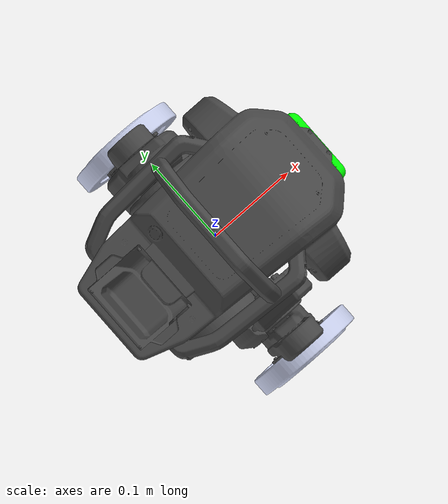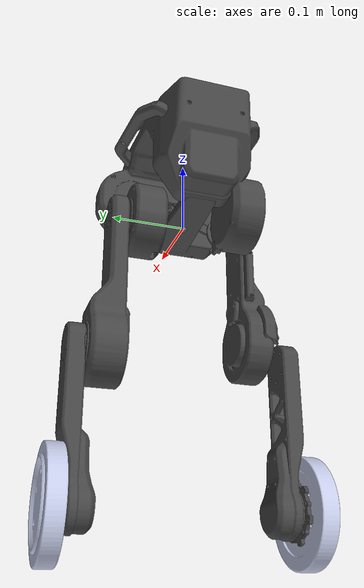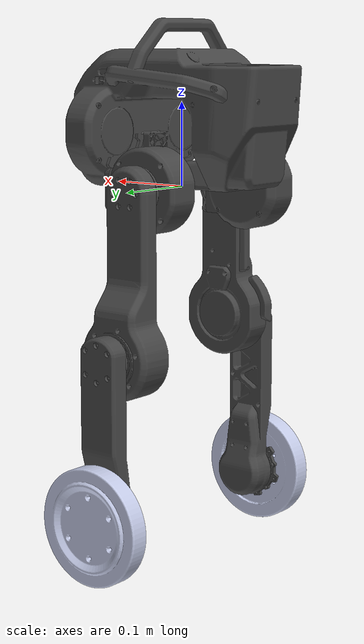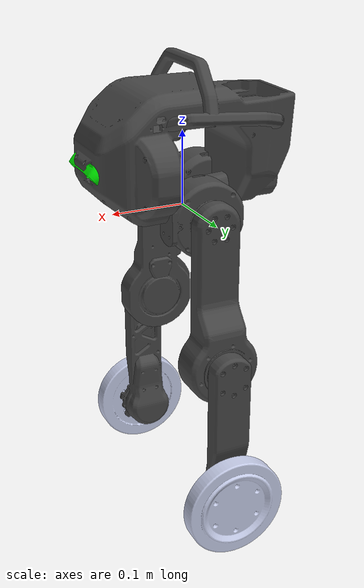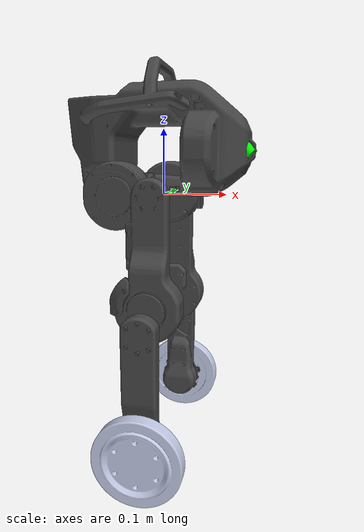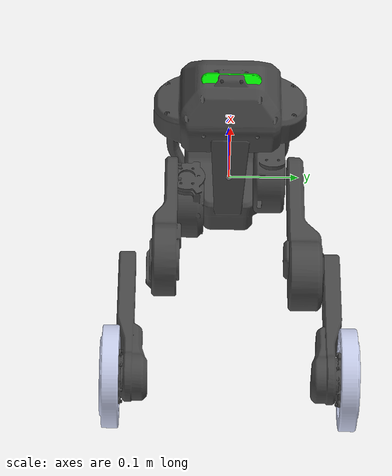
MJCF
<mujoco model="pineapple">
  <compiler angle="radian" meshdir="../v1/meshes/"/>
  <option cone="elliptic" impratio="100"/>

  <default>
      <default class="pinapple">
          <geom friction="0.4" margin="0.001" condim="1"/>
          <joint damping="0.1" armature="0.01" frictionloss="0.2"/>
          <motor ctrlrange="-23.7 23.7"/>
          <default class="l_hip">
              <joint axis="1 0 0" range="-0.52358 0.17444"/>
              <motor ctrlrange="-23.7 23.7"/>
          </default>
          <default class="r_hip">
              <joint axis="1 0 0" range="-0.17444 0.52358"/>
              <motor ctrlrange="-23.7 23.7"/>
          </default>
          <default class="thigh">
              <joint axis="0 1 0" range="0 1.57"/>
              <motor ctrlrange="-23.7 23.7"/>
          </default>
          <default class="calf">
              <joint axis="0 1 0" range="-3.141 0"/>
              <motor ctrlrange="-33.5 33.5"/>
          </default>
          <default class="visual">
              <geom type="mesh" contype="0" conaffinity="0" group="2"/>
          </default>
          <default class="collision">
              <geom group="3" type="mesh" rgba="1 0 0 0.3" />
              <default class="wheel">
              <geom size="0.022" priority="1" condim="6"
                  friction="0.8 0.02 0.01"/>
              </default>
          </default>
      </default>
  </default>

  <asset>
    <mesh name="base_link" file="base_link.STL"/>
    <mesh name="base_link_collision" file="base_link_collision.STL"/>
    <mesh name="cam" file="cam.STL"/>
    <mesh name="L_hip" file="L_hip.STL"/>
    <mesh name="L_thigh" file="L_thigh.STL"/>
    <mesh name="L_thigh_collision" file="L_thigh_collision.STL"/>
    <mesh name="L_calf" file="L_calf.STL"/>
    <mesh name="L_calf_collision" file="L_calf_collision.STL"/>
    <mesh name="L_wheel" file="L_wheel.STL"/>
    <mesh name="R_hip" file="R_hip.STL"/>
    <mesh name="R_thigh" file="R_thigh.STL"/>
    <mesh name="R_thigh_collision" file="R_thigh_collision.STL"/>
    <mesh name="R_calf" file="R_calf.STL"/>
    <mesh name="R_calf_collision" file="R_calf_collision.STL"/>
    <mesh name="R_wheel" file="R_wheel.STL"/>
  </asset>

  <worldbody>
  <body name="base_link" pos="0 0 0" childclass="pinapple">
      <inertial pos="-0.02063232 0.00164283 -0.01555938" quat="1 0 0 0" mass="2.65" diaginertia="0.01804185 0.01102779 0.00752637" />
      <freejoint />
      <site name="imu" pos="0 0 0" />
      <geom type="mesh" contype="0" conaffinity="0" group="1" density="0" rgba="0.278431 0.278431 0.278431 1" mesh="base_link"/>
      <geom type="mesh" rgba="0.752941 0.752941 0.752941 1" mesh="base_link_collision" class="collision"/>
      <geom pos="0.136663 0 0.0595399" quat="0.939693 0 0.34202 0" type="mesh" contype="0" conaffinity="0" group="1" density="0" rgba="0 1 0 1" mesh="cam"/>
      <body name="L_hip" pos="0 0.06125 0" >
        <inertial pos="0.00220657 -0.00275734 0.00000000" quat="0.495134 0.500357 0.505071 0.499388" mass="0.573" diaginertia="0.000929348 0.000666519 0.000585923"/>
        <joint name="L_hip_joint" class="l_hip"/>
        <geom type="mesh" contype="0" conaffinity="0" group="1" density="0" rgba="0.278431 0.278431 0.278431 1" mesh="L_hip"/>
        <body name="L_thigh" pos="0 0.0129353 0">
          <inertial pos="-3.518e-05 -0.024423 -0.117737" quat="0.707036 0.023514 -0.0231203 0.706408" mass="0.75" diaginertia="0.00563942 0.00538265 0.000562439"/>
          <joint name="L_thigh_joint" class="thigh"/>
          <geom type="mesh" contype="0" conaffinity="0" group="1" density="0" rgba="0.278431 0.278431 0.278431 1" mesh="L_thigh"/>
          <geom type="mesh" rgba="0.752941 0.752941 0.752941 1" mesh="L_thigh_collision" class="collision"/>
          <body name="L_calf" pos="0 0.0359318 -0.19">
            <inertial pos="-6.785e-05 -0.0320155 -0.120892" quat="0.705593 -0.00113069 0.00081195 0.708616" mass="0.5" diaginertia="0.00347557 0.00341614 0.000198605"/>
            <joint name="L_calf_joint" class="calf"/>
            <geom type="mesh" contype="0" conaffinity="0" group="1" density="0" rgba="0.278431 0.278431 0.278431 1" mesh="L_calf"/>
            <geom type="mesh" rgba="0.752941 0.752941 0.752941 1" mesh="L_calf_collision" class="collision"/>
            <body name="L_wheel" pos="0 0.0421818 -0.19">
              <inertial pos="0 -0.0125028 0" quat="0.642727 0.294626 0.294808 0.642795" mass="0.305" diaginertia="0.00105426 0.000539805 0.000539745"/>
              <joint name="L_wheel_joint" pos="0 0 0" axis="0 1 0" actuatorfrcrange="-3.69 3.69"/>
              <geom type="mesh" contype="0" conaffinity="0" group="1" density="0" rgba="0.792157 0.819608 0.933333 1" mesh="L_wheel"/>
              <geom size="0.075 0.013" pos="0 0.013 0" quat="0.707105 0.707108 0 0" type="cylinder" rgba="0.792157 0.819608 0.933333 1" class="collision"/>
            </body>
          </body>
        </body>
      </body>
      <body name="R_hip" pos="0 -0.06125 0">
        <inertial pos="0.00220657 0.00275734 0" quat="0.499604 0.504856 0.500523 0.494968" mass="0.573" diaginertia="0.000929348 0.000666519 0.000585923"/>
        <joint name="R_hip_joint" class="r_hip"/>
        <geom type="mesh" contype="0" conaffinity="0" group="1" density="0" rgba="0.278431 0.278431 0.278431 1" mesh="R_hip"/>
        <body name="R_thigh" pos="0 -0.0129353 0">
          <inertial pos="-3.518e-05 -0.024423 -0.117737" quat="0.706424 -0.0231082 0.0235272 0.70702" mass="0.75" diaginertia="0.00563942 0.00538265 0.000562439"/>
          <joint name="R_thigh_joint" class="thigh"/>
          <geom type="mesh" contype="0" conaffinity="0" group="1" density="0" rgba="0.278431 0.278431 0.278431 1" mesh="R_thigh"/>
          <geom type="mesh" rgba="0.278431 0.278431 0.278431 1" mesh="R_thigh_collision" class="collision"/>
          <body name="R_calf" pos="0 -0.0359318 -0.19">
            <inertial pos="-6.785e-05 -0.0320155 -0.120892" quat="0.708616 0.000810906 -0.00112966 0.705593" mass="0.5" diaginertia="0.00347557 0.00341614 0.000198605"/>
            <joint name="R_calf_joint" class="calf"/>
            <geom type="mesh" contype="0" conaffinity="0" group="1" density="0" rgba="0.278431 0.278431 0.278431 1" mesh="R_calf"/>
            <geom type="mesh" rgba="0.278431 0.278431 0.278431 1" mesh="R_calf_collision" class="collision"/>
            <body name="R_wheel" pos="0 -0.0421818 -0.19">
              <inertial pos="0 -0.0125028 0" quat="0.297382 0.641457 0.641639 0.297315" mass="0.305" diaginertia="0.00105426 0.000539805 0.000539745"/>
              <joint name="R_wheel_joint" pos="0 0 0" axis="0 1 0" actuatorfrcrange="-3.69 3.69"/>
              <geom type="mesh" contype="0" conaffinity="0" group="1" density="0" rgba="0.792157 0.819608 0.933333 1" mesh="R_wheel"/>
              <geom size="0.075 0.013" pos="0 -0.013 0" quat="0.707105 0.707108 0 0" type="cylinder" rgba="0.792157 0.819608 0.933333 1" class="collision"/>
            </body>
          </body>
        </body>
      </body>
    </body>
  </worldbody>

  <actuator>
      <motor class="l_hip" name="L_hip" joint="L_hip_joint" />
      <motor class="thigh" name="L_thigh" joint="L_thigh_joint" />
      <motor class="calf" name="L_calf" joint="L_calf_joint" />
      <motor ctrlrange="-3.69 3.69" name="L_wheel" joint="L_wheel_joint" />

      <motor class="r_hip" name="R_hip" joint="R_hip_joint" />
      <motor class="thigh" name="R_thigh" joint="R_thigh_joint" />
      <motor class="calf" name="R_calf" joint="R_calf_joint" />
      <motor ctrlrange="-3.69 3.69" name="R_wheel" joint="R_wheel_joint" />

  </actuator>

  <sensor>

      <jointpos name="L_hip_pos" joint="L_hip_joint" />
      <jointpos name="L_thigh_pos" joint="L_thigh_joint" />
      <jointpos name="L_calf_pos" joint="L_calf_joint" />
      <jointpos name="L_wheel_pos" joint="L_wheel_joint" />

      <jointpos name="R_hip_pos" joint="R_hip_joint" />
      <jointpos name="R_thigh_pos" joint="R_thigh_joint" />
      <jointpos name="R_calf_pos" joint="R_calf_joint" />
      <jointpos name="R_wheel_pos" joint="R_wheel_joint" />

      <jointvel name="L_hip_vel" joint="L_hip_joint" />
      <jointvel name="L_thigh_vel" joint="L_thigh_joint" />
      <jointvel name="L_calf_vel" joint="L_calf_joint" />
      <jointvel name="L_wheel_vel" joint="L_wheel_joint" noise="0.0"/>

      <jointvel name="R_hip_vel" joint="R_hip_joint" />
      <jointvel name="R_thigh_vel" joint="R_thigh_joint" />
      <jointvel name="R_calf_vel" joint="R_calf_joint" />
      <jointvel name="R_wheel_vel" joint="R_wheel_joint" noise="0.0"/>

      <jointactuatorfrc name="L_hip_torque" joint="L_hip_joint" noise="0.01" />
      <jointactuatorfrc name="L_thigh_torque" joint="L_thigh_joint" noise="0.01" />
      <jointactuatorfrc name="L_calf_torque" joint="L_calf_joint" noise="0.01" />
      <jointactuatorfrc name="L_wheel_torque" joint="L_wheel_joint" />

      <jointactuatorfrc name="R_hip_torque" joint="R_hip_joint" noise="0.01" />
      <jointactuatorfrc name="R_thigh_torque" joint="R_thigh_joint" noise="0.01" />
      <jointactuatorfrc name="R_calf_torque" joint="R_calf_joint" noise="0.01" />
      <jointactuatorfrc name="R_wheel_torque" joint="R_wheel_joint" />

      <framequat name="imu_quat" objtype="site" objname="imu" noise="0.0"/>
      <gyro name="imu_gyro" site="imu" noise="0.0"/>
      <accelerometer name="imu_acc" site="imu" />

      <framepos name="frame_pos" objtype="site" objname="imu" />
      <framelinvel name="frame_lin_vel" objtype="site" objname="imu" />
      <frameangvel name="frame_ang_vel" objtype="site" objname="imu" />
  </sensor>
</mujoco>
